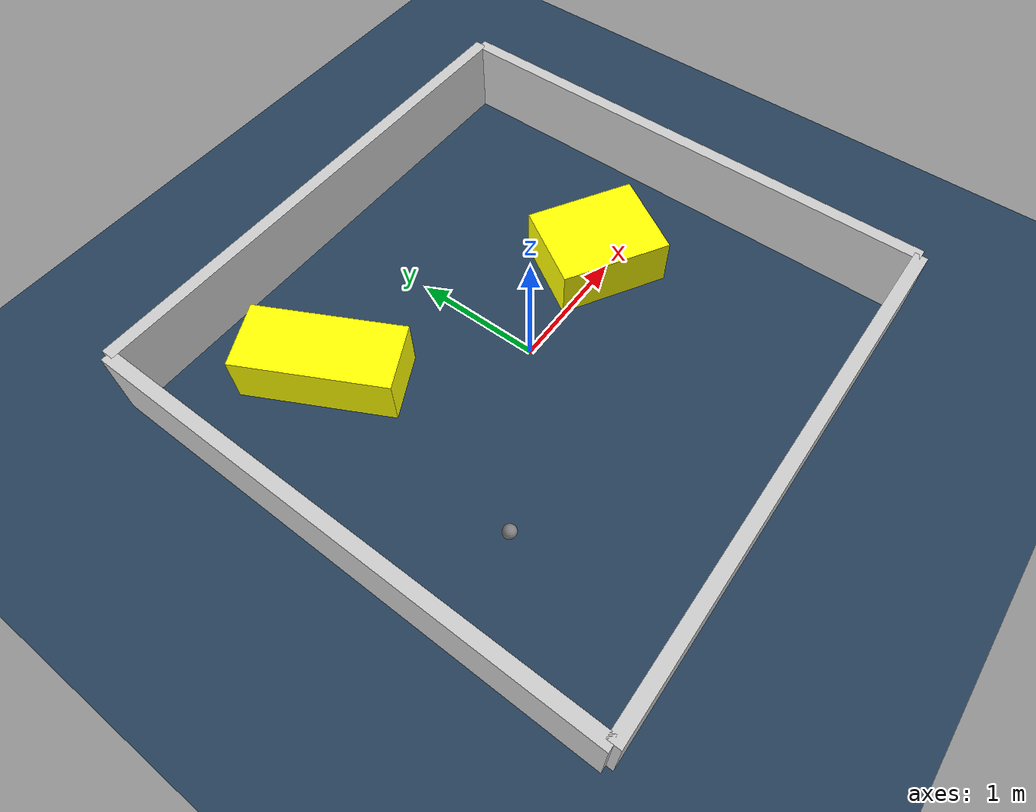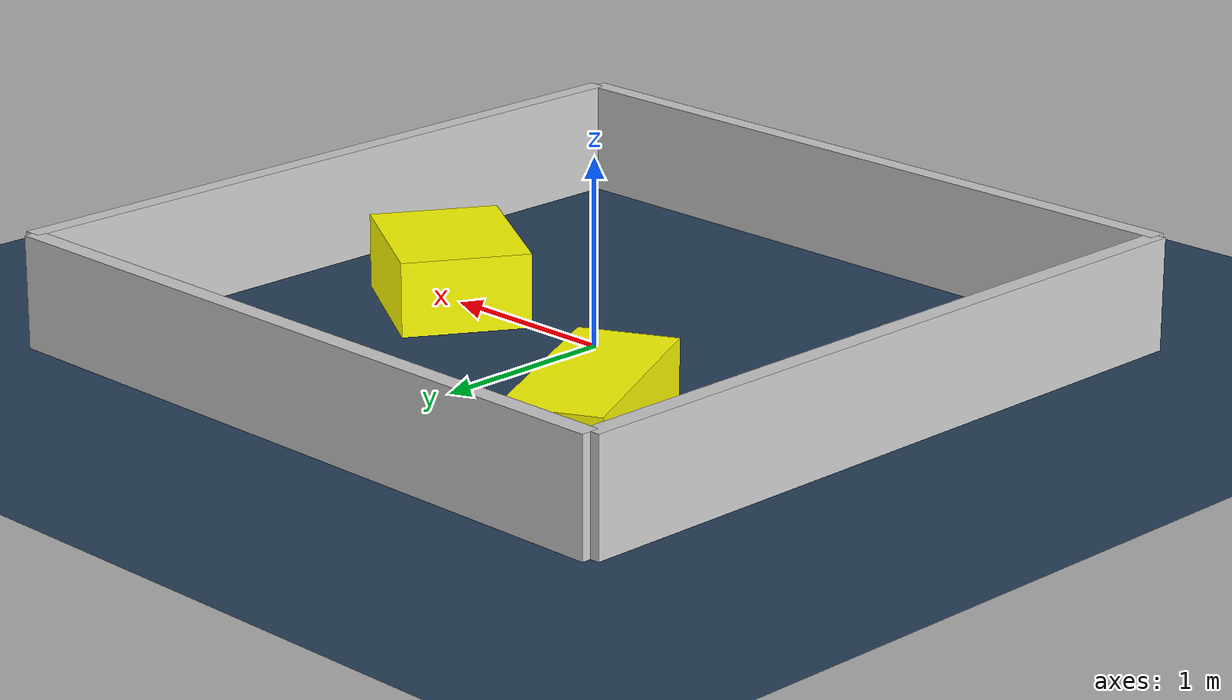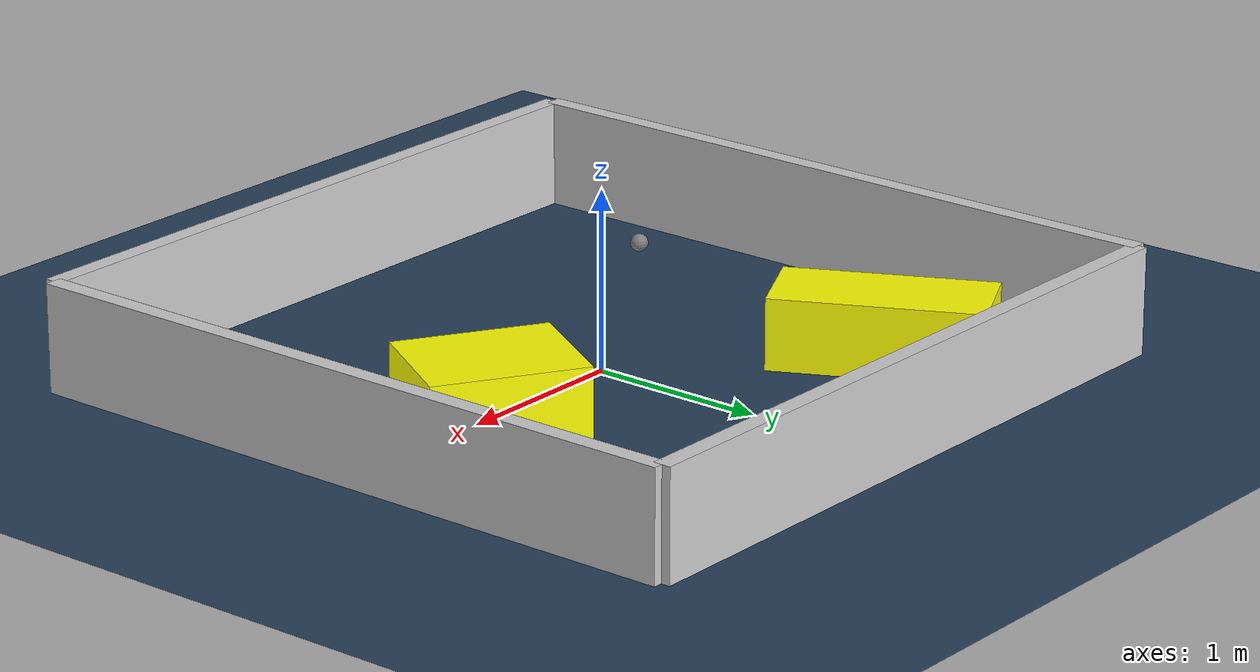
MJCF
<?xml version="1.0" ?>
<mujoco model="generated_environment">
  <option timestep="0.01" integrator="RK4" cone="elliptic"/>
  <default>
    <geom density="1"/>
  </default>
  <asset>
    <texture builtin="gradient" height="3072" rgb1="0.3 0.5 0.7" rgb2="0 0 0" type="skybox" width="512"/>
    <texture builtin="checker" height="300" mark="edge" markrgb="0.8 0.8 0.8" name="groundplane" rgb1="0.2 0.3 0.4" rgb2="0.1 0.2 0.3" type="2d" width="300"/>
    <material name="groundplane" reflectance="0.2" texrepeat="5 5" texture="groundplane" texuniform="true"/>
    <material name="robot" rgba="0.0 1.0 0.0 1"/>
  </asset>
  <worldbody>
    <light dir="0 0 -1" directional="true" pos="0 0 1.5"/>
    <geom condim="4" friction="1.0 0.005 0.001" material="groundplane" name="floor" size="0 0 0.05" type="plane"/>
    <body name="walls">
      <geom name="wall_1" condim="4" pos="-2.0 0.0 0.3" rgba="0.800000011920929 0.800000011920929 0.800000011920929 1.0" size="0.05 2.0 0.3" type="box"/>
      <geom name="wall_2" condim="4" pos="2.0 0.0 0.3" rgba="0.800000011920929 0.800000011920929 0.800000011920929 1.0" size="0.05 2.0 0.3" type="box"/>
      <geom name="wall_3" condim="4" pos="0.0 -2.0 0.3" rgba="0.800000011920929 0.800000011920929 0.800000011920929 1.0" size="2.0 0.05 0.3" type="box"/>
      <geom name="wall_4" condim="4" pos="0.0 2.0 0.3" rgba="0.800000011920929 0.800000011920929 0.800000011920929 1.0" size="2.0 0.05 0.3" type="box"/>
    </body>
    <body name="robot">
      <joint name="joint_x" type="slide" pos="0 0 0" axis="1 0 0"/>
      <joint name="joint_y" type="slide" pos="0 0 0" axis="0 1 0"/>
      <geom name="robot" type="sphere" pos="-1.2755045573651984 -0.7777156884245234 0.2" size="0.05" mass="5." friction="1.0 0.005 0.0001" condim="4"/>
      <site name="sensor_ball"/>
    </body>
    <body name="obstacle_1_movable">
      <geom name="obstacle_1_movable" condim="4" pos="0.9852617052099066 0.08566003915640663 0.2" euler="0 0 148.9067842230726" friction="1.0 0.005 0.001" rgba="1 1 0 1" size="0.43150927833566727 0.34216510337298656 0.2" type="box" mass="0.1"/>
      <joint type="free"/>
    </body>
    <body name="obstacle_2_movable">
      <geom name="obstacle_2_movable" condim="4" pos="-1.040696235823287 1.0561236161887968 0.2" euler="0 0 296.8412703415237" friction="1.0 0.005 0.001" rgba="1 1 0 1" size="0.5828054278767185 0.2581340919787589 0.2" type="box" mass="0.1"/>
      <joint type="free"/>
    </body>
  </worldbody>
  <actuator>
    <motor name="actuator_x" joint="joint_x" gear="1" ctrlrange="-1 1"/>
    <motor name="actuator_y" joint="joint_y" gear="1" ctrlrange="-1 1"/>
  </actuator>
</mujoco>
